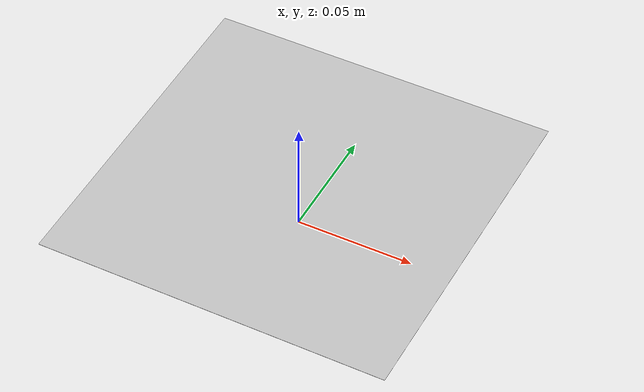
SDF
<sdf version='1.5'>
  <model name='ARUCO'>
    <link name='ARUCO'>
      <pose frame=''>0 0 0.01 0 -0 0</pose>
      <inertial>
        <pose frame=''>0 0 0 0 -0 0</pose>
        <mass>0.1</mass>
        <inertia>
          <ixx>1</ixx>
          <ixy>0</ixy>
          <ixz>0</ixz>
          <iyy>1</iyy>
          <iyz>0</iyz>
          <izz>1</izz>
        </inertia>
      </inertial>
      <visual name='ARUCO_visual'>
        <pose frame=''>0 0 0.01 0 -0 0</pose>
        <geometry>
          <box>
            <size>0.15 0.15 0.0001</size>
          </box>
        </geometry>
        <material>
        <script>
           <uri>file://Media/m1.material</uri>
           <name>aruco2/m1</name>
         </script>
        </material>
      </visual>
      <gravity>0</gravity>
      <velocity_decay/>
      <self_collide>0</self_collide>
    </link>
  </model>
</sdf>
